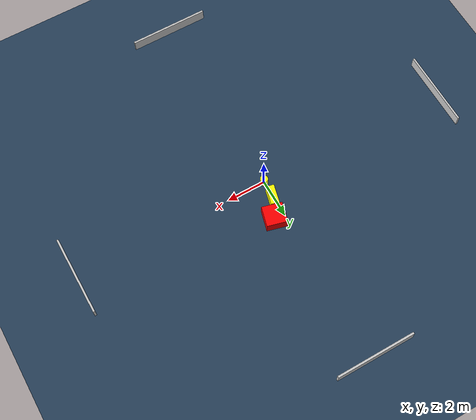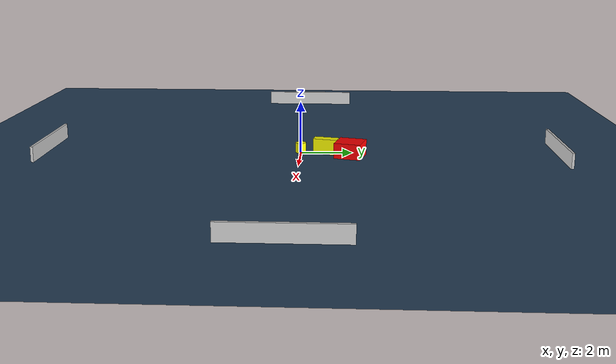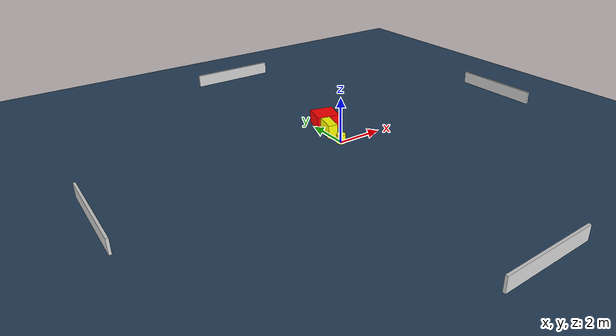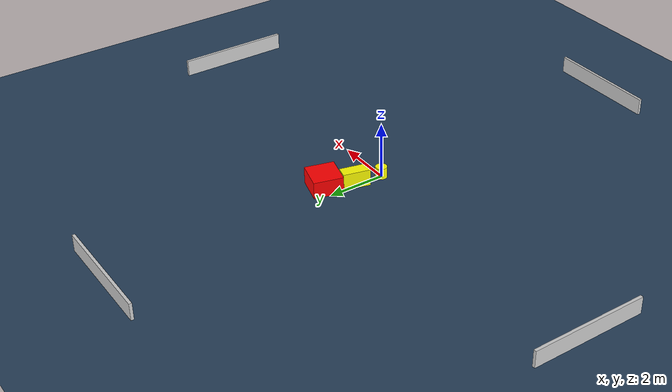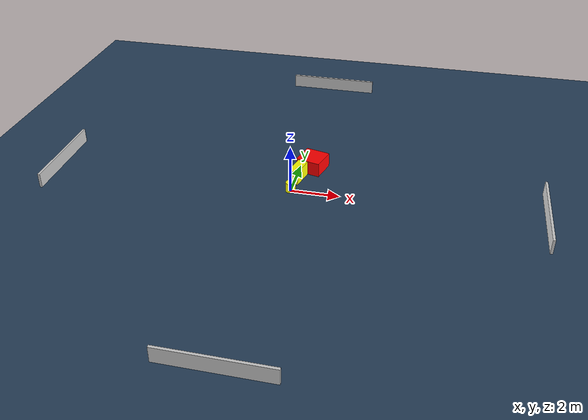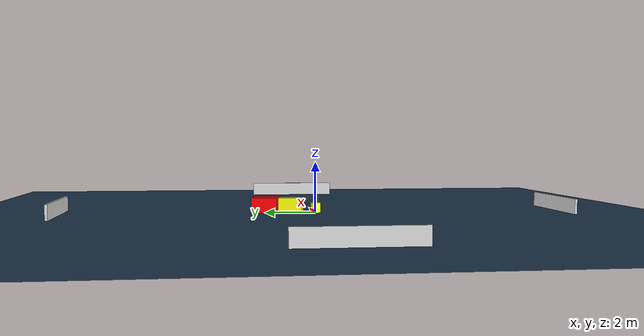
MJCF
<?xml version="1.0" ?>
<mujoco model="generated_environment">
  <option timestep="0.01" integrator="RK4" cone="elliptic"/>
  <default>
    <geom density="1"/>
  </default>
  <asset>
    <texture builtin="gradient" height="3072" name="skybox" rgb1="0.3 0.5 0.7" rgb2="0 0 0" type="skybox" width="512"/>
    <texture builtin="checker" height="300" name="groundplane" rgb1="0.2 0.3 0.4" rgb2="0.1 0.2 0.3" type="2d" width="300"/>
    <material name="groundplane" reflectance="0.2" texrepeat="5 5" texture="groundplane"/>
  </asset>
  <worldbody>
    <light dir="0 0 -1" directional="true" pos="0 0 1.5"/>
    <geom condim="3" friction="0.5 0.005 0.001" material="groundplane" name="floor" pos="0 0 0" size="0 0 0.05" type="plane"/>
    <body name="walls">
      <geom name="wall_1" condim="4" pos="-10.0 0.0 0.3" rgba="0.800000011920929 0.800000011920929 0.800000011920929 1.0" size="0.05 2.0 0.3" type="box"/>
      <geom name="wall_2" condim="4" pos="10.0 0.0 0.3" rgba="0.800000011920929 0.800000011920929 0.800000011920929 1.0" size="0.05 2.0 0.3" type="box"/>
      <geom name="wall_3" condim="4" pos="0.0 -10.0 0.3" rgba="0.800000011920929 0.800000011920929 0.800000011920929 1.0" size="2.0 0.05 0.3" type="box"/>
      <geom name="wall_4" condim="4" pos="0.0 10.0 0.3" rgba="0.800000011920929 0.800000011920929 0.800000011920929 1.0" size="2.0 0.05 0.3" type="box"/>
    </body>
    <body name="robot">
      <joint name="joint_x" type="slide" pos="0 0 0" axis="1 0 0"/>
      <joint name="joint_y" type="slide" pos="0 0 0" axis="0 1 0"/>
      <geom name="robot" type="cylinder" pos="0.0 0.0 0.2" size="0.2 0.2 0.0" mass="5.0" friction="1.0 0.005 0.0001" condim="4" rgba="1.0 1.0 0.0 1.0"/>
    </body>
    <body name="obstacle_1_movable">
      <geom name="obstacle_1_movable" condim="4" pos="0.09633382889967373 0.9887212217900552 0.3" euler="0 0 76.39220501620551" friction="0.0 0.005 0.001" rgba="1.0 1.0 0.0 1.0" size="0.47691469259576535 0.2068806418701185 0.3" type="box" mass="0.1"/>
      <joint type="free"/>
    </body>
    <body name="obstacle_2_static">
      <geom name="obstacle_2_static" condim="4" pos="0.5276809442446433 1.925483593453892 0.3" euler="0 0 165.24530755229182" friction="0.0 0.005 0.001" rgba="1.0 0.0 0.0 1.0" size="0.5175197233919211 0.5139731824364041 0.3" type="box"/>
    </body>
  </worldbody>
  <actuator>
    <motor name="actuator_x" joint="joint_x" gear="1" ctrlrange="-1 1"/>
    <motor name="actuator_y" joint="joint_y" gear="1" ctrlrange="-1 1"/>
  </actuator>
</mujoco>
